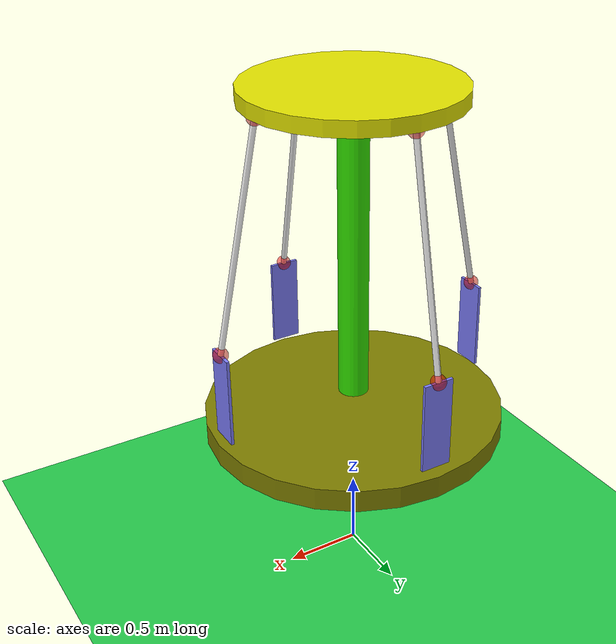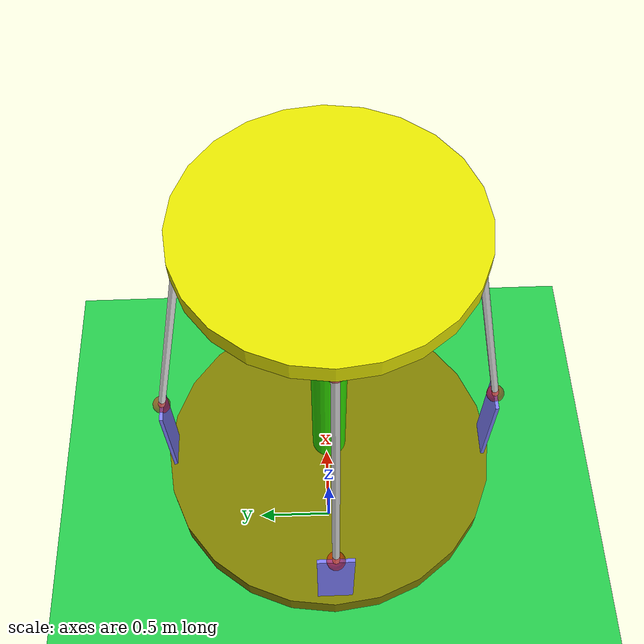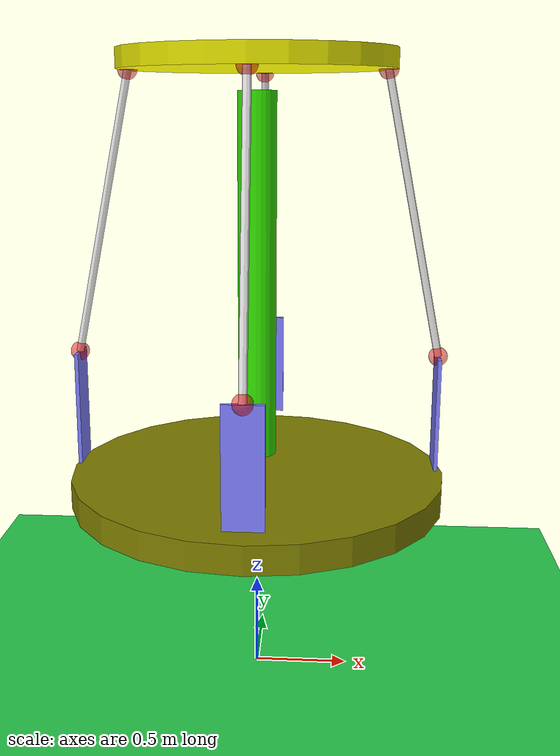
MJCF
<mujoco>
    <compiler inertiafromgeom='true' angle='degree'/>

    <option timestep='0.002' iterations="50" solver="PGS">
        <flag energy="enable"/>
    </option>

    <default>
        <site type="sphere" rgba=".9 0 0 .5" size="0.05"/>
    </default>

    <!-- materials etc. -->
    <asset>
        <texture name="texplane" type="2d" builtin="checker" rgb1=".2 .9 .4" rgb2=".1 0.7 0.2" width="100"
                 height="100"/>
        <material name='MatPlane' reflectance='0.015' texture="texplane" texrepeat="1 1" texuniform="true"/>
    </asset>

    <visual>
        <quality shadowsize="2048"/>
    </visual>

    <!-- world -->
    <worldbody>
        <!-- sun -->
        <light diffuse=".5 .5 .5" pos="0 30 30" dir="0 -1 -1"/>

        <!-- ground -->
        <geom name='floor' pos='0 0 0' size='10 10 0.125' type='plane' material="MatPlane" condim='3'/>

        <!-- sunflower -->
        <body name='creature' pos='0 0 1'>
            <joint name='root' type='free'/>
            <geom name='foot' type='cylinder' fromto='0 0 0  0 0 .15' size='1.0' rgba="0.5 .5 0 1"/>

            <body name='stem' pos='0 0 0.25'>
                <joint type='hinge' axis='1 0 0' limited='true' range=' -50  50' damping='5' stiffness='10' armature='0.01'/>
                <joint type='hinge' axis='0 1 0' limited='true' range=' -50  50' damping='5' stiffness='10' armature='0.01'/>
                <joint type='hinge' axis='0 0 1' limited='true' range='-250 250' damping='5' stiffness='10' armature='0.01'/>
                <geom type='cylinder' fromto='0 0 0  0.0 0.0 1.9' size='.1' rgba="0.2 .9 0 1"/>
                <body name='head' pos='0 0 2.'>
                    <joint type='hinge' axis='1 0 0' limited='true' range=' -50  50' damping='5' stiffness='10' armature='0.01'/>
                    <joint type='hinge' axis='0 1 0' limited='true' range=' -50  50' damping='5' stiffness='10' armature='0.01'/>
                    <joint type='hinge' axis='0 0 1' limited='true' range='-250 250' damping='5' stiffness='10' armature='0.01'/>
                    <geom name='head' type='cylinder' fromto='0. 0. 0.  0. .0 0.1' size='0.7' rgba="0.9 .9 0 1"/>
                    <site name="s1h" pos=" 0    0.65 -0.0"/>
                    <site name="s2h" pos=" 0   -0.65 -0.0"/>
                    <site name="s3h" pos=" 0.65    0 -0.0"/>
                    <site name="s4h" pos="-0.65    0 -0.0"/>
                </body>
            </body>

            <body name='m1' pos='0 0.95 0.5'>
                <joint type="slide" pos="0 0 0" axis="0 0 -1" limited="true" range="0 0.5" />
                <geom type="box" size=".1 .01 .3" rgba=".5 .5 2. 1"/>
                <site name="s1f" pos="0 0 0.3"/>
            </body>

            <body name='m2' pos='0 -0.95 0.5'>
                <joint type="slide" pos="0 0 0" axis="0 0 -1" limited="true" range="0 0.5" />
                <geom type="box" size=".1 .01 .3" rgba=".5 .5 2. 1"/>
                <site name="s2f" pos="0 0 0.3"/>
            </body>

            <body name='m3' pos='0.95 0 0.5'>
                <joint type="slide" pos="0 0 0" axis="0 0 -1" limited="true" range="0 0.5" />
                <geom type="box" size=".01 .1 .3" rgba=".5 .5 2. 1"/>
                <site name="s3f" pos="0 0 0.3"/>
            </body>

            <body name='m4' pos='-0.95 0 0.5'>
                <joint type="slide" pos="0 0 0" axis="0 0 -1" limited="true" range="0 0.5" />
                <geom type="box" size=".01 .1 .3" rgba=".5 .5 2. 1"/>
                <site name="s4f" pos="0 0 0.3"/>
            </body>

        </body>
    </worldbody>

    <tendon>
        <spatial name="t1" width="0.02" rgba=".9 .9 .9 1" limited="true" range="0 1.5">
            <site site="s1f"/>
            <site site="s1h"/>
        </spatial>
        <spatial name="t2" width="0.02" rgba=".9 .9 .9 1" limited="true" range="0 1.5">
            <site site="s2f"/>
            <site site="s2h"/>
        </spatial>
        <spatial name="t3" width="0.02" rgba=".9 .9 .9 1" limited="true" range="0 1.5">
            <site site="s3f"/>
            <site site="s3h"/>
        </spatial>
        <spatial name="t4" width="0.02" rgba=".9 .9 .9 1" limited="true" range="0 1.5">
            <site site="s4f"/>
            <site site="s4h"/>
        </spatial>
    </tendon>

</mujoco>
